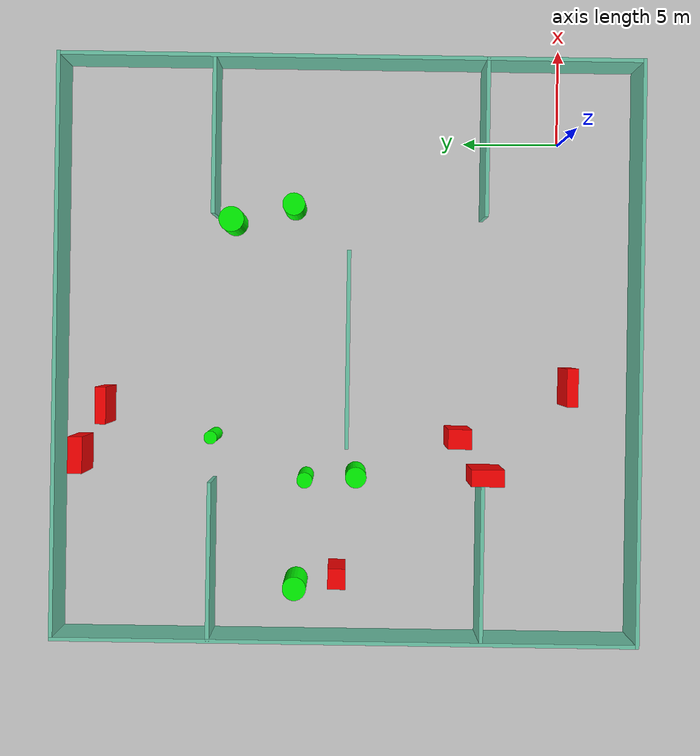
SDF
<sdf version="1.7">
 <world name="default">
  <light name="sun" type="directional">
   <pose>0 0 10 0 -0 0</pose>
   <diffuse>0.8 0.8 0.8 1</diffuse>
   <specular>0.2 0.2 0.2 1</specular>
   <attenuation>
    <range>1000</range>
    <constant>0.9</constant>
    <linear>0.01</linear>
    <quadratic>0.001</quadratic>
   </attenuation>
   <direction>-0.5 0.1 -0.9</direction>
   <spot><inner_angle>0</inner_angle><outer_angle>0</outer_angle><falloff>0</falloff></spot>
  </light>
  <model name="ground_plane">
   <static>1</static>
   <link name="link">
    <collision name="collision">
     <geometry><plane><normal>0 0 1</normal><size>100 100</size></plane></geometry>
     <surface>
      <contact><collide_bitmask>65535</collide_bitmask></contact>
      <friction><ode><mu>100</mu><mu2>50</mu2></ode></friction>
     </surface>
    </collision>
    <visual name="visual">
     <cast_shadows>0</cast_shadows>
     <geometry><plane><normal>0 0 1</normal><size>100 100</size></plane></geometry>
     <material>
      <script><uri>file://media/materials/scripts/gazebo.material</uri><name>Gazebo/Grey</name></script>
     </material>
    </visual>
   </link>
  </model>
  <gravity>0 0 -9.8</gravity>
  <magnetic_field>6e-06 2.3e-05 -4.2e-05</magnetic_field>
  <atmosphere type="adiabatic"/>
  <physics type="ode">
   <max_step_size>0.001</max_step_size>
   <real_time_factor>1</real_time_factor>
   <real_time_update_rate>1000</real_time_update_rate>
  </physics>
  <scene><ambient>0.4 0.4 0.4 1</ambient><background>0.7 0.7 0.7 1</background><shadows>1</shadows></scene>
  <spherical_coordinates>
   <surface_model>EARTH_WGS84</surface_model>
   <latitude_deg>0</latitude_deg>
   <longitude_deg>0</longitude_deg>
   <elevation>0</elevation>
   <heading_deg>0</heading_deg>
  </spherical_coordinates>
  <model name="my_base_walls">
   <link name="Wall_10">
    <collision name="Wall_10_Collision">
     <geometry><box><size>8.2 0.2 2.5</size></box></geometry>
     <pose>0 0 1.25 0 -0 0</pose>
    </collision>
    <visual name="Wall_10_Visual">
     <pose>0 0 1.25 0 -0 0</pose>
     <geometry><box><size>8.2 0.2 2.5</size></box></geometry>
     <material>
      <script><uri>file://media/materials/scripts/gazebo.material</uri><name>Gazebo/Grey</name></script>
      <ambient>0.435294 0.796078 0.67451 1</ambient>
     </material>
     <meta><layer>0</layer></meta>
    </visual>
    <pose>-11 -7 0 0 -0 0</pose>
   </link>
   <link name="Wall_12">
    <collision name="Wall_12_Collision">
     <geometry><box><size>8.2 0.2 2.5</size></box></geometry>
     <pose>0 0 1.25 0 -0 0</pose>
    </collision>
    <visual name="Wall_12_Visual">
     <pose>0 0 1.25 0 -0 0</pose>
     <geometry><box><size>8.2 0.2 2.5</size></box></geometry>
     <material>
      <script><uri>file://media/materials/scripts/gazebo.material</uri><name>Gazebo/Grey</name></script>
      <ambient>0.435294 0.796078 0.67451 1</ambient>
     </material>
     <meta><layer>0</layer></meta>
    </visual>
    <pose>-11 7 0 0 -0 0</pose>
   </link>
   <link name="Wall_14">
    <collision name="Wall_14_Collision">
     <geometry><box><size>8.2 0.2 2.5</size></box></geometry>
     <pose>0 0 1.25 0 -0 0</pose>
    </collision>
    <visual name="Wall_14_Visual">
     <pose>0 0 1.25 0 -0 0</pose>
     <geometry><box><size>8.2 0.2 2.5</size></box></geometry>
     <material>
      <script><uri>file://media/materials/scripts/gazebo.material</uri><name>Gazebo/Grey</name></script>
      <ambient>0.435294 0.796078 0.67451 1</ambient>
     </material>
     <meta><layer>0</layer></meta>
    </visual>
    <pose>11 7 0 0 -0 3.14159</pose>
   </link>
   <link name="Wall_16">
    <collision name="Wall_16_Collision">
     <geometry><box><size>10.2 0.2 2.5</size></box></geometry>
     <pose>0 0 1.25 0 -0 0</pose>
    </collision>
    <visual name="Wall_16_Visual">
     <pose>0 0 1.25 0 -0 0</pose>
     <geometry><box><size>10.2 0.2 2.5</size></box></geometry>
     <material>
      <script><uri>file://media/materials/scripts/gazebo.material</uri><name>Gazebo/Grey</name></script>
      <ambient>0.435294 0.796078 0.67451 1</ambient>
     </material>
     <meta><layer>0</layer></meta>
    </visual>
    <pose>0 0 0 0 -0 3.14159</pose>
   </link>
   <link name="Wall_2">
    <collision name="Wall_2_Collision">
     <geometry><box><size>30.2 0.2 2.5</size></box></geometry>
     <pose>0 0 1.25 0 -0 0</pose>
    </collision>
    <visual name="Wall_2_Visual">
     <pose>0 0 1.25 0 -0 0</pose>
     <geometry><box><size>30.2 0.2 2.5</size></box></geometry>
     <material>
      <script><uri>file://media/materials/scripts/gazebo.material</uri><name>Gazebo/Grey</name></script>
      <ambient>0.435294 0.796078 0.67451 1</ambient>
     </material>
     <meta><layer>0</layer></meta>
    </visual>
    <pose>0 -15 0 0 -0 3.14159</pose>
   </link>
   <link name="Wall_3">
    <collision name="Wall_3_Collision">
     <geometry><box><size>30.2 0.2 2.5</size></box></geometry>
     <pose>0 0 1.25 0 -0 0</pose>
    </collision>
    <visual name="Wall_3_Visual">
     <pose>0 0 1.25 0 -0 0</pose>
     <geometry><box><size>30.2 0.2 2.5</size></box></geometry>
     <material>
      <script><uri>file://media/materials/scripts/gazebo.material</uri><name>Gazebo/Grey</name></script>
      <ambient>0.435294 0.796078 0.67451 1</ambient>
     </material>
     <meta><layer>0</layer></meta>
    </visual>
    <pose>-15 0 0 0 -0 1.5708</pose>
   </link>
   <link name="Wall_4">
    <collision name="Wall_4_Collision">
     <geometry><box><size>30.2 0.2 2.5</size></box></geometry>
     <pose>0 0 1.25 0 -0 0</pose>
    </collision>
    <visual name="Wall_4_Visual">
     <pose>0 0 1.25 0 -0 0</pose>
     <geometry><box><size>30.2 0.2 2.5</size></box></geometry>
     <material>
      <script><uri>file://media/materials/scripts/gazebo.material</uri><name>Gazebo/Grey</name></script>
      <ambient>0.435294 0.796078 0.67451 1</ambient>
     </material>
     <meta><layer>0</layer></meta>
    </visual>
    <pose>0 15 0 0 -0 0</pose>
   </link>
   <link name="Wall_6">
    <collision name="Wall_6_Collision">
     <geometry><box><size>30.2 0.2 2.5</size></box></geometry>
     <pose>0 0 1.25 0 -0 0</pose>
    </collision>
    <visual name="Wall_6_Visual">
     <pose>0 0 1.25 0 -0 0</pose>
     <geometry><box><size>30.2 0.2 2.5</size></box></geometry>
     <material>
      <script><uri>file://media/materials/scripts/gazebo.material</uri><name>Gazebo/Grey</name></script>
      <ambient>0.435294 0.796078 0.67451 1</ambient>
     </material>
     <meta><layer>0</layer></meta>
    </visual>
    <pose>15 0 0 0 -0 1.5708</pose>
   </link>
   <link name="Wall_8">
    <collision name="Wall_8_Collision">
     <geometry><box><size>8.2 0.2 2.5</size></box></geometry>
     <pose>0 0 1.25 0 -0 0</pose>
    </collision>
    <visual name="Wall_8_Visual">
     <pose>0 0 1.25 0 -0 0</pose>
     <geometry><box><size>8.2 0.2 2.5</size></box></geometry>
     <material>
      <script><uri>file://media/materials/scripts/gazebo.material</uri><name>Gazebo/Grey</name></script>
      <ambient>0.435294 0.796078 0.67451 1</ambient>
     </material>
     <meta><layer>0</layer></meta>
    </visual>
    <pose>11 -7 0 0 -0 3.14159</pose>
   </link>
   <static>1</static>
   <pose>-11 11 0 0 -0 0</pose>
  </model>
  <model name="cylinder1">
   <static>1</static>
   <link name="link">
    <inertial>
     <mass>1</mass>
     <inertia><ixx>0.5</ixx><ixy>0</ixy><ixz>0</ixz><iyy>0.5</iyy><iyz>0</iyz><izz>1</izz></inertia>
    </inertial>
    <collision name="collision">
     <geometry><cylinder><radius>0.5388390550731299</radius><length>2.5</length></cylinder></geometry>
    </collision>
    <visual name="visual">
     <geometry><cylinder><radius>0.5388390550731299</radius><length>2.5</length></cylinder></geometry>
     <material>
      <ambient>0 1 0 1</ambient>
      <diffuse>0 1 0 1</diffuse>
      <specular>0.1 0.1 0.1 1</specular>
      <emissive>0 0 0 0</emissive>
     </material>
    </visual>
   </link>
   <pose>-17.53482384694606 10.495592361345619 1.25 0 0 0</pose>
  </model>
  <model name="cylinder2">
   <static>1</static>
   <link name="link">
    <inertial>
     <mass>1</mass>
     <inertia><ixx>0.5</ixx><ixy>0</ixy><ixz>0</ixz><iyy>0.5</iyy><iyz>0</iyz><izz>1</izz></inertia>
    </inertial>
    <collision name="collision">
     <geometry><cylinder><radius>0.40410189457186446</radius><length>2.5</length></cylinder></geometry>
    </collision>
    <visual name="visual">
     <geometry><cylinder><radius>0.40410189457186446</radius><length>2.5</length></cylinder></geometry>
     <material>
      <ambient>0 1 0 1</ambient>
      <diffuse>0 1 0 1</diffuse>
      <specular>0.1 0.1 0.1 1</specular>
      <emissive>0 0 0 0</emissive>
     </material>
    </visual>
   </link>
   <pose>-17.711558923889577 13.119549741965049 1.25 0 0 0</pose>
  </model>
  <model name="cylinder3">
   <static>1</static>
   <link name="link">
    <inertial>
     <mass>1</mass>
     <inertia><ixx>0.5</ixx><ixy>0</ixy><ixz>0</ixz><iyy>0.5</iyy><iyz>0</iyz><izz>1</izz></inertia>
    </inertial>
    <collision name="collision">
     <geometry><cylinder><radius>0.6095796284098447</radius><length>2.5</length></cylinder></geometry>
    </collision>
    <visual name="visual">
     <geometry><cylinder><radius>0.6095796284098447</radius><length>2.5</length></cylinder></geometry>
     <material>
      <ambient>0 1 0 1</ambient>
      <diffuse>0 1 0 1</diffuse>
      <specular>0.1 0.1 0.1 1</specular>
      <emissive>0 0 0 0</emissive>
     </material>
    </visual>
   </link>
   <pose>-23.26606623614487 13.579966619392145 1.25 0 0 0</pose>
  </model>
  <model name="cylinder4">
   <static>1</static>
   <link name="link">
    <inertial>
     <mass>1</mass>
     <inertia><ixx>0.5</ixx><ixy>0</ixy><ixz>0</ixz><iyy>0.5</iyy><iyz>0</iyz><izz>1</izz></inertia>
    </inertial>
    <collision name="collision">
     <geometry><cylinder><radius>0.3374220721733219</radius><length>2.5</length></cylinder></geometry>
    </collision>
    <visual name="visual">
     <geometry><cylinder><radius>0.3374220721733219</radius><length>2.5</length></cylinder></geometry>
     <material>
      <ambient>0 1 0 1</ambient>
      <diffuse>0 1 0 1</diffuse>
      <specular>0.1 0.1 0.1 1</specular>
      <emissive>0 0 0 0</emissive>
     </material>
    </visual>
   </link>
   <pose>-15.588042495630578 17.956747532849114 1.25 0 0 0</pose>
  </model>
  <model name="cylinder5">
   <static>1</static>
   <link name="link">
    <inertial>
     <mass>1</mass>
     <inertia><ixx>0.5</ixx><ixy>0</ixy><ixz>0</ixz><iyy>0.5</iyy><iyz>0</iyz><izz>1</izz></inertia>
    </inertial>
    <collision name="collision">
     <geometry><cylinder><radius>0.5783841934502616</radius><length>2.5</length></cylinder></geometry>
    </collision>
    <visual name="visual">
     <geometry><cylinder><radius>0.5783841934502616</radius><length>2.5</length></cylinder></geometry>
     <material>
      <ambient>0 1 0 1</ambient>
      <diffuse>0 1 0 1</diffuse>
      <specular>0.1 0.1 0.1 1</specular>
      <emissive>0 0 0 0</emissive>
     </material>
    </visual>
   </link>
   <pose>-3.5872018288050747 13.861158891222232 1.25 0 0 0</pose>
  </model>
  <model name="cylinder6">
   <static>1</static>
   <link name="link">
    <inertial>
     <mass>1</mass>
     <inertia><ixx>0.5</ixx><ixy>0</ixy><ixz>0</ixz><iyy>0.5</iyy><iyz>0</iyz><izz>1</izz></inertia>
    </inertial>
    <collision name="collision">
     <geometry><cylinder><radius>0.6488882227926128</radius><length>2.5</length></cylinder></geometry>
    </collision>
    <visual name="visual">
     <geometry><cylinder><radius>0.6488882227926128</radius><length>2.5</length></cylinder></geometry>
     <material>
      <ambient>0 1 0 1</ambient>
      <diffuse>0 1 0 1</diffuse>
      <specular>0.1 0.1 0.1 1</specular>
      <emissive>0 0 0 0</emissive>
     </material>
    </visual>
   </link>
   <pose>-4.394717260923564 17.047830664616644 1.25 0 0 0</pose>
  </model>
  <model name="box1">
   <static>1</static>
   <link name="link">
    <inertial>
     <mass>1</mass>
     <inertia><ixx>0.083</ixx><ixy>0</ixy><ixz>0</ixz><iyy>0.083</iyy><iyz>0</iyz><izz>0.083</izz></inertia>
    </inertial>
    <collision name="collision">
     <geometry><box><size>1.9674338977206365 0.5922365410575585 2.5</size></box></geometry>
    </collision>
    <visual name="visual">
     <geometry><box><size>1.9674338977206365 0.5922365410575585 2.5</size></box></geometry>
     <material>
      <ambient>1 0 0 1</ambient>
      <diffuse>1 0 0 1</diffuse>
      <specular>0.1 0.1 0.1 1</specular>
      <emissive>0 0 0 0</emissive>
     </material>
    </visual>
    <sensor name="my_contact" type="contact">
     <contact><collision>box_collision</collision><topic>__default_topic__</topic></contact>
    </sensor>
   </link>
   <pose>-12.793605629195342 -0.5138946341443282 1.25 0 0 0</pose>
  </model>
  <model name="box2">
   <static>1</static>
   <link name="link">
    <inertial>
     <mass>1</mass>
     <inertia><ixx>0.083</ixx><ixy>0</ixy><ixz>0</ixz><iyy>0.083</iyy><iyz>0</iyz><izz>0.083</izz></inertia>
    </inertial>
    <collision name="collision">
     <geometry><box><size>0.879601152937712 1.6999390865236323 2.5</size></box></geometry>
    </collision>
    <visual name="visual">
     <geometry><box><size>0.879601152937712 1.6999390865236323 2.5</size></box></geometry>
     <material>
      <ambient>1 0 0 1</ambient>
      <diffuse>1 0 0 1</diffuse>
      <specular>0.1 0.1 0.1 1</specular>
      <emissive>0 0 0 0</emissive>
     </material>
    </visual>
    <sensor name="my_contact" type="contact">
     <contact><collision>box_collision</collision><topic>__default_topic__</topic></contact>
    </sensor>
   </link>
   <pose>-17.483260039145208 3.742141146281713 1.25 0 0 0</pose>
  </model>
  <model name="box3">
   <static>1</static>
   <link name="link">
    <inertial>
     <mass>1</mass>
     <inertia><ixx>0.083</ixx><ixy>0</ixy><ixz>0</ixz><iyy>0.083</iyy><iyz>0</iyz><izz>0.083</izz></inertia>
    </inertial>
    <collision name="collision">
     <geometry><box><size>1.8949617604041284 0.7436453956402678 2.5</size></box></geometry>
    </collision>
    <visual name="visual">
     <geometry><box><size>1.8949617604041284 0.7436453956402678 2.5</size></box></geometry>
     <material>
      <ambient>1 0 0 1</ambient>
      <diffuse>1 0 0 1</diffuse>
      <specular>0.1 0.1 0.1 1</specular>
      <emissive>0 0 0 0</emissive>
     </material>
    </visual>
    <sensor name="my_contact" type="contact">
     <contact><collision>box_collision</collision><topic>__default_topic__</topic></contact>
    </sensor>
   </link>
   <pose>-16.59365594754956 24.87922668237476 1.25 0 0 0</pose>
  </model>
  <model name="box4">
   <static>1</static>
   <link name="link">
    <inertial>
     <mass>1</mass>
     <inertia><ixx>0.083</ixx><ixy>0</ixy><ixz>0</ixz><iyy>0.083</iyy><iyz>0</iyz><izz>0.083</izz></inertia>
    </inertial>
    <collision name="collision">
     <geometry><box><size>1.9161337232855082 0.5511139610815933 2.5</size></box></geometry>
    </collision>
    <visual name="visual">
     <geometry><box><size>1.9161337232855082 0.5511139610815933 2.5</size></box></geometry>
     <material>
      <ambient>1 0 0 1</ambient>
      <diffuse>1 0 0 1</diffuse>
      <specular>0.1 0.1 0.1 1</specular>
      <emissive>0 0 0 0</emissive>
     </material>
    </visual>
    <sensor name="my_contact" type="contact">
     <contact><collision>box_collision</collision><topic>__default_topic__</topic></contact>
    </sensor>
   </link>
   <pose>-14.028823317396617 23.605397119519118 1.25 0 0 0</pose>
  </model>
  <model name="box5">
   <static>1</static>
   <link name="link">
    <inertial>
     <mass>1</mass>
     <inertia><ixx>0.083</ixx><ixy>0</ixy><ixz>0</ixz><iyy>0.083</iyy><iyz>0</iyz><izz>0.083</izz></inertia>
    </inertial>
    <collision name="collision">
     <geometry><box><size>1.0549477277589887 0.9133575657995422 2.5</size></box></geometry>
    </collision>
    <visual name="visual">
     <geometry><box><size>1.0549477277589887 0.9133575657995422 2.5</size></box></geometry>
     <material>
      <ambient>1 0 0 1</ambient>
      <diffuse>1 0 0 1</diffuse>
      <specular>0.1 0.1 0.1 1</specular>
      <emissive>0 0 0 0</emissive>
     </material>
    </visual>
    <sensor name="my_contact" type="contact">
     <contact><collision>box_collision</collision><topic>__default_topic__</topic></contact>
    </sensor>
   </link>
   <pose>-22.741292825681704 11.416298492456747 1.25 0 0 0</pose>
  </model>
  <model name="box6">
   <static>1</static>
   <link name="link">
    <inertial>
     <mass>1</mass>
     <inertia><ixx>0.083</ixx><ixy>0</ixy><ixz>0</ixz><iyy>0.083</iyy><iyz>0</iyz><izz>0.083</izz></inertia>
    </inertial>
    <collision name="collision">
     <geometry><box><size>1.0201491220149843 1.2272462214507442 2.5</size></box></geometry>
    </collision>
    <visual name="visual">
     <geometry><box><size>1.0201491220149843 1.2272462214507442 2.5</size></box></geometry>
     <material>
      <ambient>1 0 0 1</ambient>
      <diffuse>1 0 0 1</diffuse>
      <specular>0.1 0.1 0.1 1</specular>
      <emissive>0 0 0 0</emissive>
     </material>
    </visual>
    <sensor name="my_contact" type="contact">
     <contact><collision>box_collision</collision><topic>__default_topic__</topic></contact>
    </sensor>
   </link>
   <pose>-15.509836683796932 5.196775711930284 1.25 0 0 0</pose>
  </model>
 </world>
</sdf>
